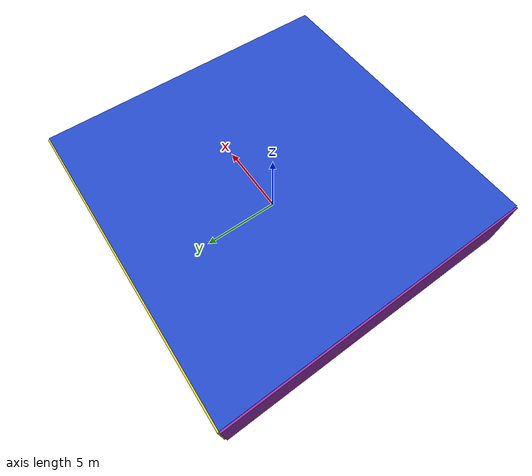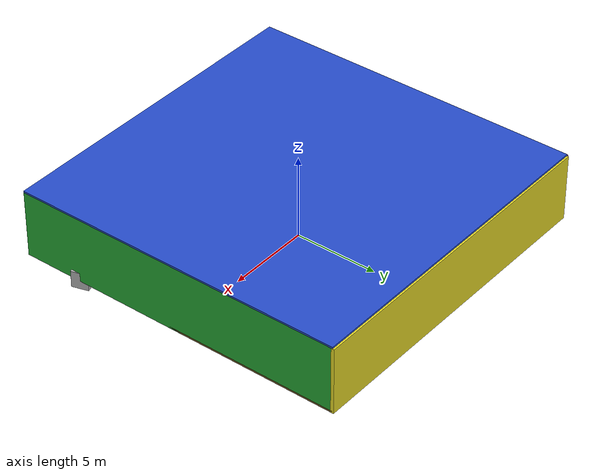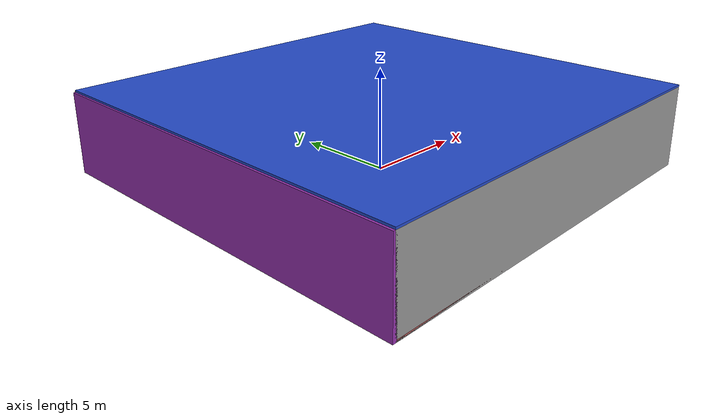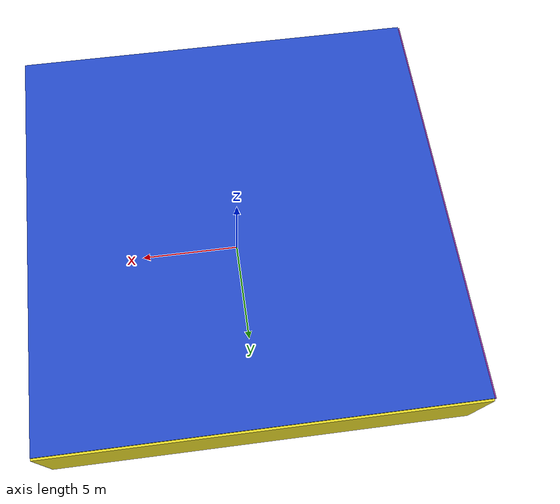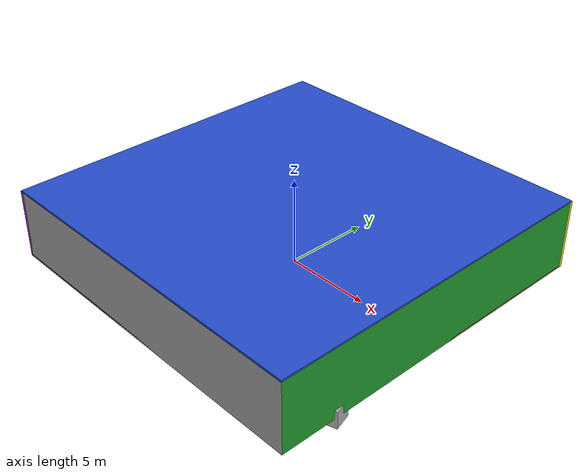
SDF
<sdf version="1.4">
 <world name="default">
  <physics type="ode">
   <max_step_size>0.001</max_step_size>
   <real_time_factor>1</real_time_factor>
   <real_time_update_rate>1000</real_time_update_rate>
   <gravity>0 0 -9.8</gravity>
  </physics>
  <scene><ambient>0.4 0.4 0.4 1</ambient><background>0.7 0.7 0.7 1</background><shadows>1</shadows></scene>
  <model name="Surrounding">
   <static>1</static>
   <link name="Ceiling">
    <collision name="Ceiling_Collision"><geometry><box><size>20 20 0.1</size></box></geometry></collision>
    <visual name="Ceiling_Visual">
     <geometry><box><size>20 20 0.1</size></box></geometry>
     <material>
      <script><uri>file://media/materials/scripts/gazebo.material</uri><name>Gazebo/BlueGlow</name></script>
     </material>
    </visual>
    <pose>0 0 4.05 0 0 0</pose>
   </link>
   <link name="Wall_South">
    <collision name="Wall_South_Collision">
     <geometry><box><size>20 0 4</size></box></geometry>
     <pose>0 0 2 0 -0 0</pose>
    </collision>
    <visual name="Wall_South_Visual">
     <pose>0 0 2 0 -0 0</pose>
     <geometry><box><size>20 0 4</size></box></geometry>
     <material>
      <script><uri>file://media/materials/scripts/gazebo.material</uri><name>Gazebo/GreyGradientSky</name></script>
     </material>
    </visual>
    <velocity_decay><linear>0</linear><angular>0</angular></velocity_decay>
    <pose>0 -10 0 0 -0 0</pose>
   </link>
   <link name="Wall_East">
    <collision name="Wall_21_Collision">
     <geometry><box><size>20 0 4</size></box></geometry>
     <pose>0 0 2 0 -0 0</pose>
    </collision>
    <visual name="Wall_21_Visual">
     <pose>0 0 2 0 -0 0</pose>
     <geometry><box><size>20 0 4</size></box></geometry>
     <material>
      <script><uri>file://media/materials/scripts/gazebo.material</uri><name>Gazebo/GreenGlow</name></script>
     </material>
    </visual>
    <velocity_decay><linear>0</linear><angular>0</angular></velocity_decay>
    <pose>10 0 0 0 -0 1.5708</pose>
   </link>
   <link name="Wall_North">
    <collision name="Wall_22_Collision">
     <geometry><box><size>20 0.2 4</size></box></geometry>
     <pose>0 0 2 0 -0 0</pose>
    </collision>
    <visual name="Wall_22_Visual">
     <pose>0 0 2 0 -0 0</pose>
     <geometry><box><size>20 0.2 4</size></box></geometry>
     <material>
      <script><uri>file://media/materials/scripts/gazebo.material</uri><name>Gazebo/YellowGlow</name></script>
     </material>
    </visual>
    <velocity_decay><linear>0</linear><angular>0</angular></velocity_decay>
    <pose>0 10 0 0 -0 0</pose>
   </link>
   <link name="Wall_West">
    <collision name="Wall_23_Collision">
     <geometry><box><size>20 0.2 4</size></box></geometry>
     <pose>0 0 2 0 -0 0</pose>
    </collision>
    <visual name="Wall_23_Visual">
     <pose>0 0 2 0 -0 0</pose>
     <geometry><box><size>20 0.2 4</size></box></geometry>
     <material>
      <script><uri>file://media/materials/scripts/gazebo.material</uri><name>Gazebo/PurpleGlow</name></script>
     </material>
    </visual>
    <velocity_decay><linear>0</linear><angular>0</angular></velocity_decay>
    <pose>-10 0 0 0 0 -1.5708</pose>
   </link>
   <link name="Ground_link">
    <collision name="collision">
     <pose>0 0 .05 0 -0 0</pose>
     <geometry><box><size>20 20 0.1</size></box></geometry>
    </collision>
    <visual name="visual">
     <pose>0 0 .05 0 -0 0</pose>
     <geometry><box><size>20 20 0.1</size></box></geometry>
     <material>
      <script><uri>file://media/materials/scripts/gazebo.material</uri><name>Gazebo/RedTransparent</name></script>
     </material>
    </visual>
   </link>
   <static>1</static>
  </model>
  <spherical_coordinates>
   <surface_model>EARTH_WGS84</surface_model>
   <latitude_deg>0</latitude_deg>
   <longitude_deg>0</longitude_deg>
   <elevation>0</elevation>
   <heading_deg>0</heading_deg>
  </spherical_coordinates>
  <light name="lightball_0" type="diffuse">
   <diffuse>0.8 0.8 0.8 1</diffuse>
   <specular>0.2 0.2 0.2 1</specular>
   <attenuation>
    <range>100</range>
    <constant>0.7</constant>
    <linear>0.01</linear>
    <quadratic>0.001</quadratic>
   </attenuation>
   <direction>-0.5 0.1 -0.9</direction>
   <pose>-1.01244417506 -3.70555762007 2.04846311901 0 0 0</pose>
  </light>
  <light name="lightball_1" type="diffuse">
   <diffuse>0.8 0.8 0.8 1</diffuse>
   <specular>0.2 0.2 0.2 1</specular>
   <attenuation>
    <range>100</range>
    <constant>0.7</constant>
    <linear>0.01</linear>
    <quadratic>0.001</quadratic>
   </attenuation>
   <direction>-0.5 0.1 -0.9</direction>
   <pose>2.17053776847 2.54686736191 2.89029443745 0 0 0</pose>
  </light>
  <light name="lightball_2" type="diffuse">
   <diffuse>0.8 0.8 0.8 1</diffuse>
   <specular>0.2 0.2 0.2 1</specular>
   <attenuation>
    <range>100</range>
    <constant>0.7</constant>
    <linear>0.01</linear>
    <quadratic>0.001</quadratic>
   </attenuation>
   <direction>-0.5 0.1 -0.9</direction>
   <pose>2.4324502889 -3.48544231059 3.64538426402 0 0 0</pose>
  </light>
  <include><uri>model://cabinet</uri><pose>-7.72169904022 0.362388454661 0 0 0 1.9506773251</pose></include>
  <include><uri>model://cabinet</uri><pose>-1.09428303523 2.64179470959 0 0 0 0.471607242838</pose></include>
  <include>
   <uri>model://textured_shapes</uri>
   <pose>8.08994082704 -6.9654445911 0 0 0 1.85590754076</pose>
  </include>
 </world>
</sdf>

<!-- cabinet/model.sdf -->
<sdf version="1.5">
  <model name="cabinet">
    <static>true</static>
    <link name="cabinet_bottom_plate">
      <inertial>
        <pose>0 0 -1 0 0 0</pose>
        <inertia>
          <ixx>2.050000</ixx>
          <ixy>0</ixy>
          <ixz>0</ixz>
          <iyy>2.050000</iyy>
          <iyz>0</iyz>
          <izz>2.050000</izz>
        </inertia>
        <mass>25.000000</mass>
      </inertial>
      <collision name="cabinet_bottom_plate_geom">
        <pose>0 0 0.010000 0 0 0</pose>
        <geometry>
          <box>
            <size>0.450000 0.450000 0.020000</size>
          </box>
        </geometry>
      </collision>
      <visual name="cabinet_bottom_plate_geom_visual">
        <pose>0 0 0.010000 0 0 0</pose>
        <geometry>
          <box>
            <size>0.450000 0.450000 0.020000</size>
          </box>
        </geometry>
        <material>
          <script>
            <uri>model://media/materials/scripts/gazebo.material</uri>
            <name>Gazebo/Wood</name>
          </script>
        </material>
      </visual>
      <collision name="cabinet_bottom_plate_geom_cabinet_back_plate">
        <pose>0.235000 0 0.510000 0 0 0</pose>
        <geometry>
          <box>
            <size>0.020000 0.450000 1.020000</size>
          </box>
        </geometry>
      </collision>
      <visual name="cabinet_bottom_plate_geom_cabinet_back_plate_visual">
        <pose>0.235000 0 0.510000 0 0 0</pose>
        <geometry>
          <box>
            <size>0.020000 0.450000 1.020000</size>
          </box>
        </geometry>
        <material>
          <script>
            <uri>model://media/materials/scripts/gazebo.material</uri>
            <name>Gazebo/Wood</name>
          </script>
        </material>
      </visual>
      <collision name="cabinet_bottom_plate_geom_cabinet_left_plate">
        <pose>0 0.235000 0.510000 0 0 0</pose>
        <geometry>
          <box>
            <size>0.450000 0.020000 1.020000</size>
          </box>
        </geometry>
      </collision>
      <visual name="cabinet_bottom_plate_geom_cabinet_left_plate_visual">
        <pose>0 0.235000 0.510000 0 0 0</pose>
        <geometry>
          <box>
            <size>0.450000 0.020000 1.020000</size>
          </box>
        </geometry>
        <material>
          <script>
            <uri>model://media/materials/scripts/gazebo.material</uri>
            <name>Gazebo/Wood</name>
          </script>
        </material>
      </visual>
      <collision name="cabinet_bottom_plate_geom_cabinet_middle_plate">
        <pose>0 0 0.510000 0 0 0</pose>
        <geometry>
          <box>
            <size>0.450000 0.450000 0.020000</size>
          </box>
        </geometry>
      </collision>
      <visual name="cabinet_bottom_plate_geom_cabinet_middle_plate_visual">
        <pose>0 0 0.510000 0 0 0</pose>
        <geometry>
          <box>
            <size>0.450000 0.450000 0.020000</size>
          </box>
        </geometry>
        <material>
          <script>
            <uri>model://media/materials/scripts/gazebo.material</uri>
            <name>Gazebo/Wood</name>
          </script>
        </material>
      </visual>
      <collision name="cabinet_bottom_plate_geom_cabinet_right_plate">
        <pose>0 -0.235000 0.510000 0 0 0</pose>
        <geometry>
          <box>
            <size>0.450000 0.020000 1.020000</size>
          </box>
        </geometry>
      </collision>
      <visual name="cabinet_bottom_plate_geom_cabinet_right_plate_visual">
        <pose>0 -0.235000 0.510000 0 0 0</pose>
        <geometry>
          <box>
            <size>0.450000 0.020000 1.020000</size>
          </box>
        </geometry>
        <material>
          <script>
            <uri>model://media/materials/scripts/gazebo.material</uri>
            <name>Gazebo/Wood</name>
          </script>
        </material>
      </visual>
      <collision name="cabinet_bottom_plate_geom_cabinet_top_plate">
        <pose>0 0 1.010000 0 0 0</pose>
        <geometry>
          <box>
            <size>0.450000 0.450000 0.020000</size>
          </box>
        </geometry>
      </collision>
      <visual name="cabinet_bottom_plate_geom_cabinet_top_plate_visual">
        <pose>0 0 1.010000 0 0 0</pose>
        <geometry>
          <box>
            <size>0.450000 0.450000 0.020000</size>
          </box>
        </geometry>
        <material>
          <script>
            <uri>model://media/materials/scripts/gazebo.material</uri>
            <name>Gazebo/Wood</name>
          </script>
        </material>
      </visual>
    </link>
  </model>
</sdf>

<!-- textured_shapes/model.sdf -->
<sdf version="1.6">
  <model name="textured_shapes">
    <pose>0 0 0.5 0 0 0</pose>
    <link name="box">
      <pose>0 -1.5 0 0 0 0</pose>
      <collision name="collision">
        <geometry>
          <box>
            <size>1 1 1</size>
          </box>
        </geometry>
      </collision>
      <visual name="visual">
        <geometry>
          <box>
            <size>1 1 1</size>
          </box>
        </geometry>
        <material>
          <script>
            <uri>model://../model_source/models/textured_shapes/materials/scripts</uri>
            <uri>model://../model_source/models/textured_shapes/materials/textures</uri>
            <name>TexturedShape/Squares</name>
          </script>
        </material>
      </visual>
    </link>
    <link name="sphere">
      <collision name="collision">
        <geometry>
          <sphere>
            <radius>0.5</radius>
          </sphere>
        </geometry>
      </collision>
      <visual name="visual">
        <geometry>
          <sphere>
            <radius>0.5</radius>
          </sphere>
        </geometry>
        <material>
          <script>
            <uri>model://../model_source/models/textured_shapes/materials/scripts</uri>
            <uri>model://../model_source/models/textured_shapes/materials/textures</uri>
            <name>TexturedShape/Squares</name>
          </script>
        </material>
      </visual>
    </link>
    <link name="cylinder">
      <pose>0 1.5 0 0 0 0</pose>
      <collision name="collision">
        <geometry>
          <cylinder>
            <radius>0.5</radius>
            <length>1</length>
          </cylinder>
        </geometry>
      </collision>
      <visual name="visual">
        <geometry>
          <cylinder>
            <radius>0.5</radius>
            <length>1</length>
          </cylinder>
        </geometry>
        <material>
          <script>
            <uri>model://../model_source/models/textured_shapes/materials/scripts</uri>
            <uri>model://../model_source/models/textured_shapes/materials/textures</uri>
            <name>TexturedShape/Squares</name>
          </script>
        </material>
      </visual>
    </link>
  </model>
</sdf>
